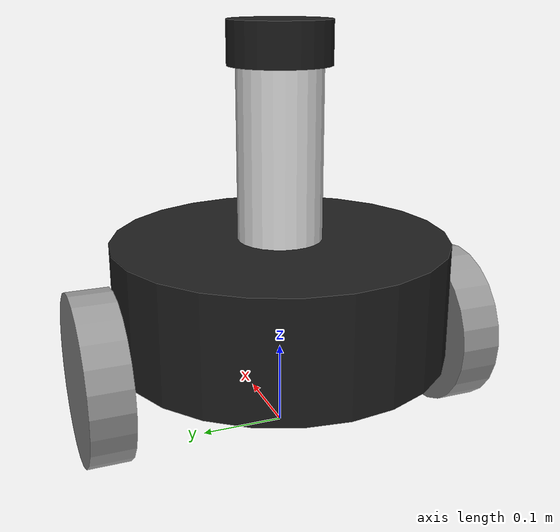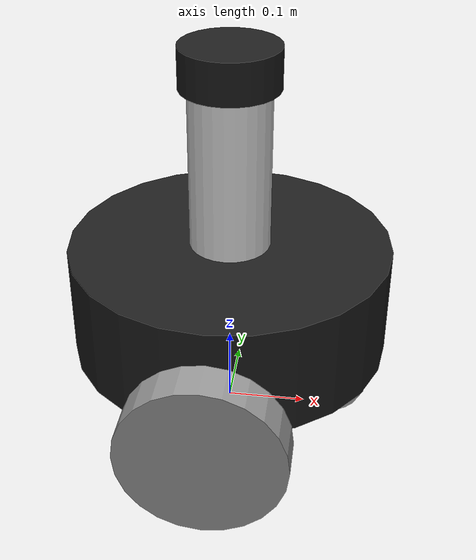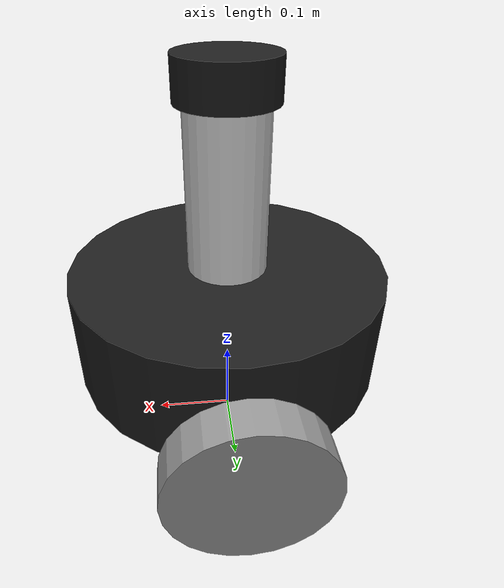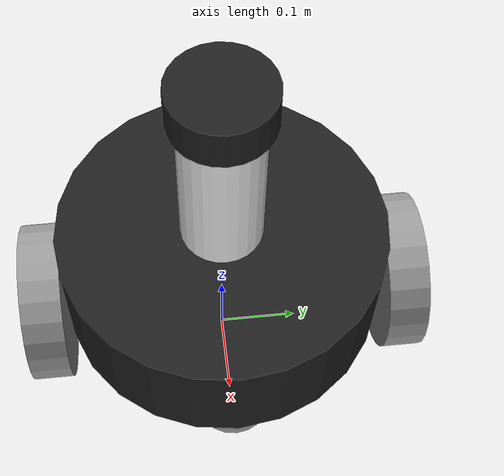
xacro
<?xml version="1.0"?>
<robot xmlns:xacro="http://www.ros.org/wiki/xacro">

    <xacro:property name="base_diameter" value="0.4" />
    <xacro:property name="base_length" value="0.14" /> <!-- Length - wysokosc podstawy -->
    <xacro:property name="wheel_radius" value="0.1" />
    <xacro:property name="wheel_length" value="0.05" />
    <xacro:property name="turret_radius" value="0.05" />
    <xacro:property name="turret_length" value="0.2" />

    <link name="base_footprint" />

    <link name="base_link">
        <visual>
            <geometry>
                <cylinder radius="${base_diameter / 2.0}" length="${base_length}"/>
            </geometry>
            <origin xyz="0 0 ${base_length / 2.0}" rpy="0 0 0" />
            <material name="black" />
        </visual>
        <collision>
            <geometry>
                <cylinder radius="${base_diameter / 2.0}" length="${base_length}"/>
            </geometry>
            <origin xyz="0 0 ${base_length / 2.0}" rpy="0 0 0" />
        </collision>
        <xacro:cylinder_inertia m="5.0" r="${2*base_diameter / 2.0}" h="${2*base_length}"
                                xyz="0 0 ${base_length / 2.0}" rpy="0 0 0" />
    </link>

    <link name="turret_link">
        <visual>
            <geometry>
                <cylinder radius="${turret_radius}" length="${turret_length}"/>
            </geometry>
            <origin xyz="0 0 0.1" rpy="0 0 0"/>
            <material name="white"/>
        </visual>
        <collision>
            <geometry>
                <cylinder radius="${turret_radius}" length="${turret_length}"/>
            </geometry>
            <origin xyz="0 0 0.1" rpy="0 0 0"/>
        </collision>
        <xacro:cylinder_inertia m="1.0" r="${turret_radius}" h="${turret_length}"
                                xyz="0 0 0.1" rpy="0 0 0" />
    </link>

    <link name="turret_top_link">
        <visual>
            <geometry>
                <cylinder radius="${turret_radius + 0.01}" length="${turret_radius}"/>
            </geometry>
            <origin xyz="0 0 0.05" rpy="0 0 0"/>
            <material name="black"/>
        </visual>
        <collision>
            <geometry>
                <cylinder radius="${turret_radius + 0.01}" length="${turret_radius}"/>
            </geometry>
            <origin xyz="0 0 0.05" rpy="0 0 0"/>
        </collision>
        <xacro:cylinder_inertia m="0.2" r="${turret_radius + 0.01}" h="${turret_radius}"
                                xyz="0 0 0.05" rpy="0 0 0" />
    </link>

    <xacro:macro name="wheel_link" params="prefix">
        <link name="${prefix}_wheel_link">
            <visual>
                <geometry>
                    <cylinder radius="${wheel_radius}" length="${wheel_length}" />
                </geometry>
                <origin xyz="0 0 0" rpy="${pi / 2.0} 0 0" />
                <material name="grey" />
            </visual>
            <collision>
                <geometry>
                    <cylinder radius="${wheel_radius}" length="${wheel_length}" />
                </geometry>
                <origin xyz="0 0 0" rpy="${pi / 2.0} 0 0" />
            </collision>
            <xacro:cylinder_inertia m="2.0" r="${2*wheel_radius}" h="${2*wheel_length}"
                                    xyz="0 0 0" rpy="${pi / 2.0} 0 0" />
        </link>
    </xacro:macro>

    <xacro:wheel_link prefix="right" />
    <xacro:wheel_link prefix="left" />

    <link name="caster_wheel_link">
        <visual>
            <geometry>
                <sphere radius="${(wheel_radius) / 2.0}" />
            </geometry>
            <origin xyz="0 0 0" rpy="0 0 0" />
            <material name="grey" />
        </visual>
        <collision>
            <geometry>
                <sphere radius="${(wheel_radius + 0.02) / 2.0}" />
            </geometry>
            <origin xyz="0 0 0" rpy="0 0 0" />
        </collision>
        <xacro:sphere_inertia m="8.0" r="${2*(wheel_radius + 0.02) / 2.0}"
                              xyz="0 0 0" rpy="0 0 0" />
    </link>

    <joint name="base_joint" type="fixed">
        <parent link="base_footprint" />
        <child link="base_link" />
        <origin xyz="0 0 ${wheel_radius}" rpy="0 0 0"/>
    </joint>

    <joint name="base_turret_joint" type="fixed">
        <parent link="base_link"/>
        <child link="turret_link"/>
        <origin xyz="0 0 ${base_length}" rpy="0 0 0"/>
    </joint>

    <joint name="turret_top_joint" type="fixed">
        <parent link="turret_link"/>
        <child link="turret_top_link"/>
        <origin xyz="0 0 0.175" rpy="0 0 0"/>
    </joint>

    <joint name="base_right_wheel_joint" type="continuous">
        <parent link="base_link" />
        <child link="right_wheel_link" />
        <origin xyz="0 ${-(base_diameter + wheel_length) / 2.0} 0" rpy="0 0 0" />
        <axis xyz="0 1 0" />
    </joint>

    <joint name="base_left_wheel_joint" type="continuous">
        <parent link="base_link" />
        <child link="left_wheel_link" />
        <origin xyz="0 ${(base_diameter + wheel_length) / 2.0} 0" rpy="0 0 0" />
        <axis xyz="0 1 0" />
    </joint>

    <joint name="base_caster_wheel_joint" type="fixed">
        <parent link="base_link" />
        <child link="caster_wheel_link" />
        <origin xyz="${base_diameter / 3.0} 0 ${-wheel_radius / 2.0}" rpy="0 0 0" />
    </joint>

</robot>
